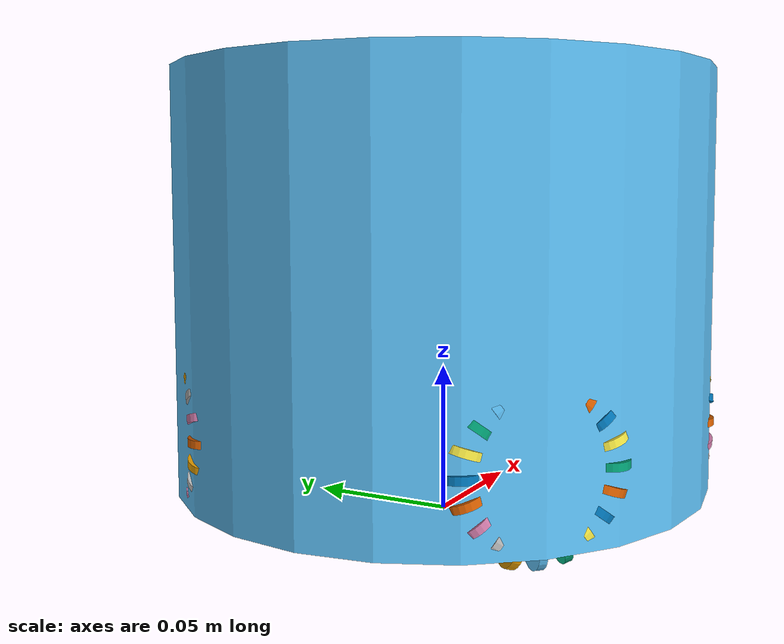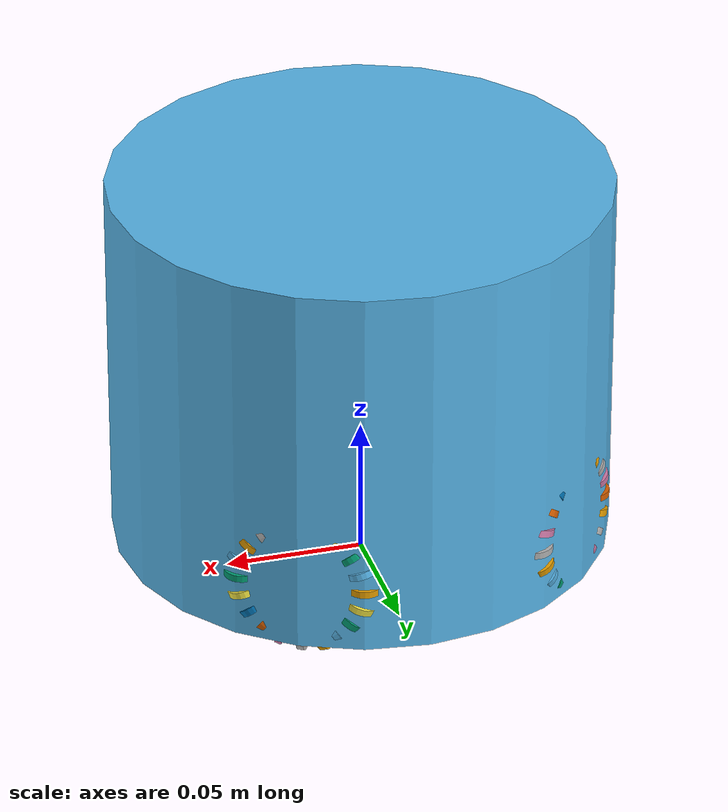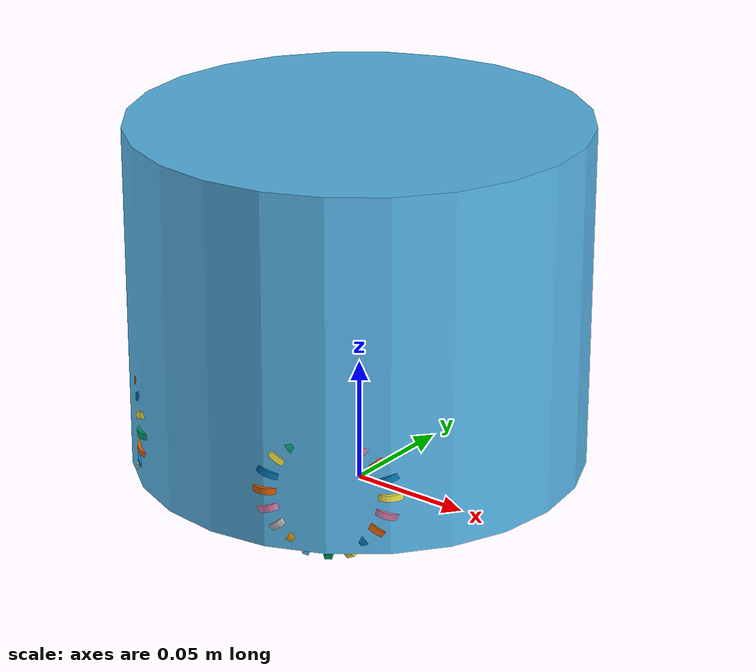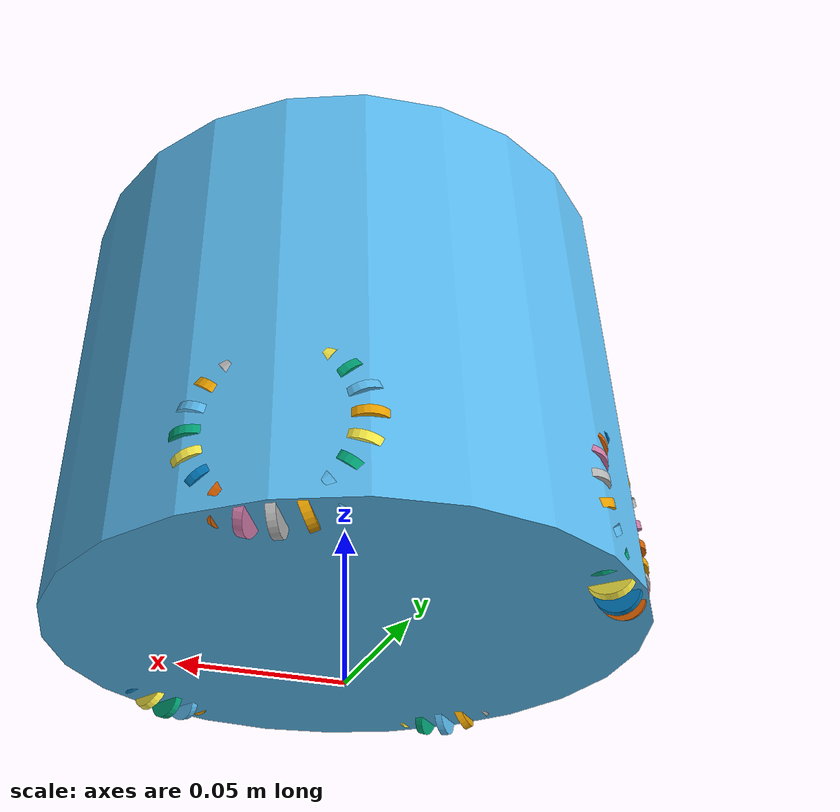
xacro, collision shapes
<?xml version="1.0"?>
<robot name="ssl_robot" xmlns:xacro="http://www.ros.org/wiki/xacro">
  <xacro:property name="ground_clearance" value="0.002" />
  <xacro:property name="base_height" value="0.138" />
  <xacro:property name="base_radius" value="0.09" />

  <xacro:include filename="$(find ssl_robot_description)/urdf/ssl_robot.gazebo" />
  <xacro:include filename="$(find ssl_robot_description)/urdf/materials.xacro" />
  <xacro:include filename="$(find ssl_robot_description)/urdf/wheel.xacro" />

  <link name="base_link">
  </link>

  <link name="base_plate">
   <inertial>
      <origin xyz="0 0 0.03" rpy="0 0 0"/>
      <mass value="34.0" />
      <inertia ixx="0.15500" ixy="0" ixz="0" iyy="0.15500" iyz="0" izz="0.12250" />
   </inertial>

   <visual>
     <origin xyz="0 0 0" rpy="0 0 -1.5707"/>
     <geometry>
       <mesh filename="package://ssl_robot_description/meshes/HBG-Roboter-now.stl"/>
     </geometry>
   </visual>

   <collision>
     <origin xyz="0 0 ${base_height/2+ground_clearance}" rpy="0 0 0"/>
     <geometry>
       <cylinder radius="${base_radius}" length="${base_height}"/>
     </geometry>
   </collision>
  </link>

  <joint name="base_joint" type="fixed">
    <parent link="base_link" />
    <child link="base_plate" />
    <axis xyz="1 0 0" />
    <origin xyz="0 0 0.01" rpy="0 0 0" />
  </joint>

  <xacro:wheel suffix="fr" parent="base_plate" origin_x="0.5" origin_y="-0.8660" rotation="-1.0472" />
  <xacro:wheel suffix="fl" parent="base_plate" origin_x="0.5" origin_y="0.8660" rotation="1.0472" />
  <xacro:wheel suffix="rl" parent="base_plate" origin_x="-0.7071" origin_y="0.7071" rotation="2.3562" />
  <xacro:wheel suffix="rr" parent="base_plate" origin_x="-0.7071" origin_y="-0.7071" rotation="-2.3562" />

</robot>

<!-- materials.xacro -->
<robot>

  <material name="black">
    <color rgba="0.0 0.0 0.0 1.0"/>
  </material>

  <material name="blue">
    <color rgba="0.0 0.0 0.8 1.0"/>
  </material>

  <material name="green">
    <color rgba="0.0 0.8 0.0 1.0"/>
  </material>

  <material name="grey">
    <color rgba="0.2 0.2 0.2 1.0"/>
  </material>

  <material name="orange">
    <color rgba="${255/255} ${108/255} ${10/255} 1.0"/>
  </material>

  <material name="brown">
    <color rgba="${222/255} ${207/255} ${195/255} 1.0"/>
  </material>

  <material name="red">
    <color rgba="0.8 0.0 0.0 1.0"/>
  </material>

  <material name="white">
    <color rgba="1.0 1.0 1.0 1.0"/>
  </material>

  <material name="aluminium">
    <color rgba="${207/255} ${208/255} ${206/255} 1.0"/>
  </material>

</robot>

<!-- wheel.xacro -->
<robot xmlns:xacro="http://www.ros.org/wiki/xacro">
  <xacro:property name="wheel_radius" value="0.027" />
  <xacro:property name="wheel_thickness" value="0.015" />
  <xacro:property name="robot_wheel_radius" value="0.075" />

  <xacro:include filename="$(find ssl_robot_description)/urdf/sub_wheel.xacro" />

  <xacro:macro name="wheel" params="suffix parent origin_x origin_y rotation">

    <link name="wheel_${suffix}">
      <inertial>
        <origin xyz="${wheel_thickness/2} 0 0" rpy="0 1.5707 0" />
        <mass value="0.8000" />
        <inertia ixx="0.012593750" ixy="0" ixz="0" iyy="0.012593750" iyz="0" izz="0.025000000" />
      </inertial>

      <visual>
        <origin xyz="0 0 0" rpy="0 1.5707 0" />
        <geometry>
          <mesh filename="package://ssl_robot_description/meshes/UBG-Rad.stl"/>
        </geometry>
      </visual>

    </link>

    <joint name="base_wheel_${suffix}" type="continuous">
      <parent link="${parent}" />
      <child link="wheel_${suffix}" />
      <axis xyz="1 0 0" />
      <origin xyz="${robot_wheel_radius*origin_x} ${robot_wheel_radius*origin_y} ${wheel_radius-ground_clearance}" rpy="0 0 ${rotation}" />
      <dynamics damping="0.05" friction="0.1" />
      <!-- (3m/s / 2*pi*r) * 2 * pi -> 3m/s / r-->
      <limit lower="0" upper="0"
             effort="5" velocity="${3/wheel_radius}" />
    </joint>

    <xacro:sub_wheel suffix="${suffix}_1" parent="wheel_${suffix}" origin_x="${(wheel_radius-0.005)*1.000000}" origin_y="${(wheel_radius-0.005)*0.000000}" rotation="0.000000" />
    <xacro:sub_wheel suffix="${suffix}_2" parent="wheel_${suffix}" origin_x="${(wheel_radius-0.005)*0.951057}" origin_y="${(wheel_radius-0.005)*0.309017}" rotation="0.314159" />
    <xacro:sub_wheel suffix="${suffix}_3" parent="wheel_${suffix}" origin_x="${(wheel_radius-0.005)*0.809017}" origin_y="${(wheel_radius-0.005)*0.587785}" rotation="0.628319" />
    <xacro:sub_wheel suffix="${suffix}_4" parent="wheel_${suffix}" origin_x="${(wheel_radius-0.005)*0.587785}" origin_y="${(wheel_radius-0.005)*0.809017}" rotation="0.942478" />
    <xacro:sub_wheel suffix="${suffix}_5" parent="wheel_${suffix}" origin_x="${(wheel_radius-0.005)*0.309017}" origin_y="${(wheel_radius-0.005)*0.951057}" rotation="1.256637" />
    <xacro:sub_wheel suffix="${suffix}_6" parent="wheel_${suffix}" origin_x="${(wheel_radius-0.005)*0.000000}" origin_y="${(wheel_radius-0.005)*1.000000}" rotation="1.570796" />
    <xacro:sub_wheel suffix="${suffix}_7" parent="wheel_${suffix}" origin_x="${(wheel_radius-0.005)*-0.309017}" origin_y="${(wheel_radius-0.005)*0.951057}" rotation="1.884956" />
    <xacro:sub_wheel suffix="${suffix}_8" parent="wheel_${suffix}" origin_x="${(wheel_radius-0.005)*-0.587785}" origin_y="${(wheel_radius-0.005)*0.809017}" rotation="2.199115" />
    <xacro:sub_wheel suffix="${suffix}_9" parent="wheel_${suffix}" origin_x="${(wheel_radius-0.005)*-0.809017}" origin_y="${(wheel_radius-0.005)*0.587785}" rotation="2.513274" />
    <xacro:sub_wheel suffix="${suffix}_10" parent="wheel_${suffix}" origin_x="${(wheel_radius-0.005)*-0.951057}" origin_y="${(wheel_radius-0.005)*0.309017}" rotation="2.827433" />
    <xacro:sub_wheel suffix="${suffix}_11" parent="wheel_${suffix}" origin_x="${(wheel_radius-0.005)*-1.000000}" origin_y="${(wheel_radius-0.005)*0.000000}" rotation="3.141593" />
    <xacro:sub_wheel suffix="${suffix}_12" parent="wheel_${suffix}" origin_x="${(wheel_radius-0.005)*-0.951057}" origin_y="${(wheel_radius-0.005)*-0.309017}" rotation="3.455752" />
    <xacro:sub_wheel suffix="${suffix}_13" parent="wheel_${suffix}" origin_x="${(wheel_radius-0.005)*-0.809017}" origin_y="${(wheel_radius-0.005)*-0.587785}" rotation="3.769911" />
    <xacro:sub_wheel suffix="${suffix}_14" parent="wheel_${suffix}" origin_x="${(wheel_radius-0.005)*-0.587785}" origin_y="${(wheel_radius-0.005)*-0.809017}" rotation="4.084070" />
    <xacro:sub_wheel suffix="${suffix}_15" parent="wheel_${suffix}" origin_x="${(wheel_radius-0.005)*-0.309017}" origin_y="${(wheel_radius-0.005)*-0.951057}" rotation="4.398230" />
    <xacro:sub_wheel suffix="${suffix}_16" parent="wheel_${suffix}" origin_x="${(wheel_radius-0.005)*-0.000000}" origin_y="${(wheel_radius-0.005)*-1.000000}" rotation="4.712389" />
    <xacro:sub_wheel suffix="${suffix}_17" parent="wheel_${suffix}" origin_x="${(wheel_radius-0.005)*0.309017}" origin_y="${(wheel_radius-0.005)*-0.951057}" rotation="5.026548" />
    <xacro:sub_wheel suffix="${suffix}_18" parent="wheel_${suffix}" origin_x="${(wheel_radius-0.005)*0.587785}" origin_y="${(wheel_radius-0.005)*-0.809017}" rotation="5.340708" />
    <xacro:sub_wheel suffix="${suffix}_19" parent="wheel_${suffix}" origin_x="${(wheel_radius-0.005)*0.809017}" origin_y="${(wheel_radius-0.005)*-0.587785}" rotation="5.654867" />
    <xacro:sub_wheel suffix="${suffix}_20" parent="wheel_${suffix}" origin_x="${(wheel_radius-0.005)*0.951057}" origin_y="${(wheel_radius-0.005)*-0.309017}" rotation="5.969026" />

    <transmission name="tran_${suffix}">
      <type>transmission_interface/SimpleTransmission</type>
      <joint name="base_wheel_${suffix}">
        <hardwareInterface>EffortJointInterface</hardwareInterface>
      </joint>
      <actuator name="wheel_${suffix}">
        <hardwareInterface>EffortJointInterface</hardwareInterface>
        <mechanicalReduction>1</mechanicalReduction>
      </actuator>
    </transmission>
  </xacro:macro>
</robot>

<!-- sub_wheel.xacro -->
<robot xmlns:xacro="http://www.ros.org/wiki/xacro">
  <xacro:property name="sub_wheel_radius" value="0.0065" />
  <xacro:property name="sub_wheel_thickness" value="0.0025" />

  <xacro:macro name="sub_wheel" params="suffix parent origin_x origin_y rotation">

    <link name="sub_wheel_${suffix}">
      <inertial>
        <origin xyz="0 0 0" rpy="0 0 0" />
        <mass value="0.010" />
        <inertia ixx="0.000000111" ixy="0" ixz="0" iyy="0.000000111" iyz="0" izz="0.000000211" />
      </inertial>

      <collision>
        <origin xyz="0 0 0" rpy="0 0 0" />
        <geometry>
          <cylinder radius="${sub_wheel_radius}" length="${sub_wheel_thickness}" />
        </geometry>
      </collision>
    </link>

    <joint name="wheel_subwheel_${suffix}" type="continuous">
      <parent link="${parent}" />
      <child link="sub_wheel_${suffix}" />
      <axis xyz="0 0 1" />
      <origin xyz="0.007 ${origin_x} ${origin_y}" rpy="${rotation} 0 0" />
      <dynamics damping="0.0001" friction="0.1" />
    </joint>
  </xacro:macro>
</robot>
